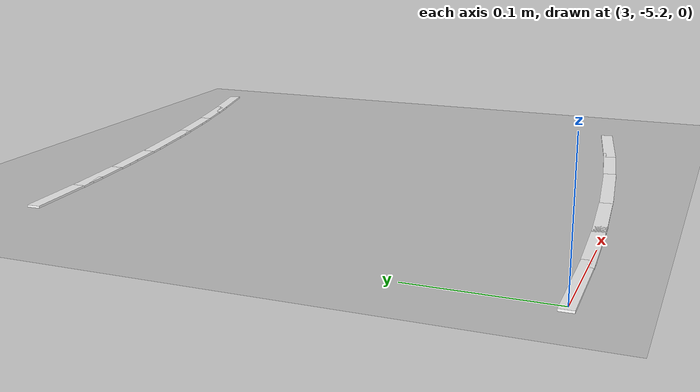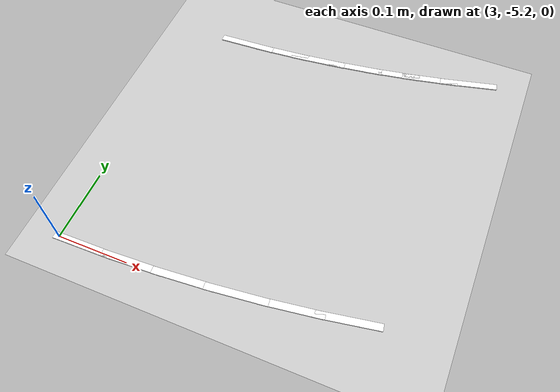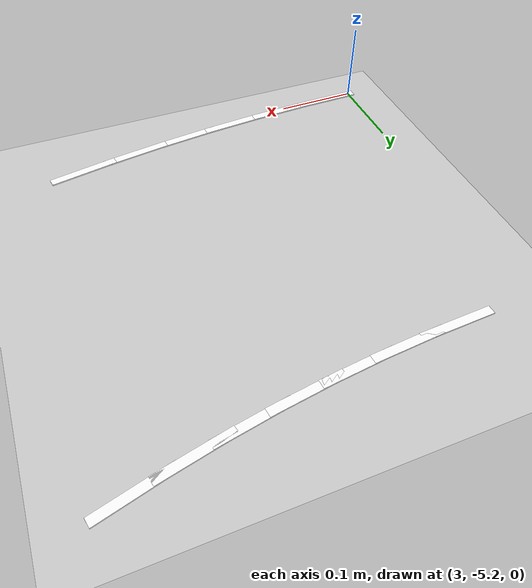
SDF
<sdf version="1.7">
 <world name="default">
  <model name="ground_plane">
   <static>1</static>
   <link name="link">
    <collision name="collision">
     <geometry><plane><normal>0 0 1</normal><size>100 100</size></plane></geometry>
     <surface>
      <contact><collide_bitmask>65535</collide_bitmask></contact>
      <friction><ode><mu>100</mu><mu2>50</mu2></ode></friction>
     </surface>
    </collision>
    <visual name="visual">
     <cast_shadows>0</cast_shadows>
     <geometry><plane><normal>0 0 1</normal><size>100 100</size></plane></geometry>
     <material>
      <script><uri>file://media/materials/scripts/gazebo.material</uri><name>Gazebo/Grey</name></script>
     </material>
    </visual>
   </link>
  </model>
  <model name="lane_line_right_50">
   <static>1</static>
   <link name="link">
    <pose>0 0 -0.004 0 -0 0</pose>
    <visual name="visual">
     <geometry><box><size>0.0841 0.01 0.01</size></box></geometry>
     <material><ambient>1 1 1 1</ambient><diffuse>1 1 1 1</diffuse></material>
    </visual>
    <collision name="collision"><geometry><box><size>0.0841 0.01 0.01</size></box></geometry></collision>
   </link>
   <pose>3.03526 -5.19946 0 0 -0 0.016029</pose>
  </model>
  <model name="lane_line_left_51">
   <static>1</static>
   <link name="link">
    <pose>0 0 -0.004 0 -0 0</pose>
    <visual name="visual">
     <geometry><box><size>0.0841 0.01 0.01</size></box></geometry>
     <material><ambient>1 1 1 1</ambient><diffuse>1 1 1 1</diffuse></material>
    </visual>
    <collision name="collision"><geometry><box><size>0.0841 0.01 0.01</size></box></geometry></collision>
   </link>
   <pose>3.08651 -4.79766 0 0 -0 0.048086</pose>
  </model>
  <model name="lane_line_right_51">
   <static>1</static>
   <link name="link">
    <pose>0 0 -0.004 0 -0 0</pose>
    <visual name="visual">
     <geometry><box><size>0.0841 0.01 0.01</size></box></geometry>
     <material><ambient>1 1 1 1</ambient><diffuse>1 1 1 1</diffuse></material>
    </visual>
    <collision name="collision"><geometry><box><size>0.0841 0.01 0.01</size></box></geometry></collision>
   </link>
   <pose>3.10574 -5.1972 0 0 -0 0.048086</pose>
  </model>
  <model name="lane_line_left_52">
   <static>1</static>
   <link name="link">
    <pose>0 0 -0.004 0 -0 0</pose>
    <visual name="visual">
     <geometry><box><size>0.0841 0.01 0.01</size></box></geometry>
     <material><ambient>1 1 1 1</ambient><diffuse>1 1 1 1</diffuse></material>
    </visual>
    <collision name="collision"><geometry><box><size>0.0841 0.01 0.01</size></box></geometry></collision>
   </link>
   <pose>3.14408 -4.79397 0 0 -0 0.080143</pose>
  </model>
  <model name="lane_line_right_52">
   <static>1</static>
   <link name="link">
    <pose>0 0 -0.004 0 -0 0</pose>
    <visual name="visual">
     <geometry><box><size>0.0841 0.01 0.01</size></box></geometry>
     <material><ambient>1 1 1 1</ambient><diffuse>1 1 1 1</diffuse></material>
    </visual>
    <collision name="collision"><geometry><box><size>0.0841 0.01 0.01</size></box></geometry></collision>
   </link>
   <pose>3.1761 -5.19268 0 0 -0 0.080143</pose>
  </model>
  <model name="lane_line_left_53">
   <static>1</static>
   <link name="link">
    <pose>0 0 -0.004 0 -0 0</pose>
    <visual name="visual">
     <geometry><box><size>0.0841 0.01 0.01</size></box></geometry>
     <material><ambient>1 1 1 1</ambient><diffuse>1 1 1 1</diffuse></material>
    </visual>
    <collision name="collision"><geometry><box><size>0.0841 0.01 0.01</size></box></geometry></collision>
   </link>
   <pose>3.20151 -4.78843 0 0 -0 0.1122</pose>
  </model>
  <model name="lane_line_right_53">
   <static>1</static>
   <link name="link">
    <pose>0 0 -0.004 0 -0 0</pose>
    <visual name="visual">
     <geometry><box><size>0.0841 0.01 0.01</size></box></geometry>
     <material><ambient>1 1 1 1</ambient><diffuse>1 1 1 1</diffuse></material>
    </visual>
    <collision name="collision"><geometry><box><size>0.0841 0.01 0.01</size></box></geometry></collision>
   </link>
   <pose>3.24629 -5.18591 0 0 -0 0.1122</pose>
  </model>
  <model name="lane_line_left_54">
   <static>1</static>
   <link name="link">
    <pose>0 0 -0.004 0 -0 0</pose>
    <visual name="visual">
     <geometry><box><size>0.0841 0.01 0.01</size></box></geometry>
     <material><ambient>1 1 1 1</ambient><diffuse>1 1 1 1</diffuse></material>
    </visual>
    <collision name="collision"><geometry><box><size>0.0841 0.01 0.01</size></box></geometry></collision>
   </link>
   <pose>3.25873 -4.78105 0 0 -0 0.144257</pose>
  </model>
  <model name="lane_line_right_54">
   <static>1</static>
   <link name="link">
    <pose>0 0 -0.004 0 -0 0</pose>
    <visual name="visual">
     <geometry><box><size>0.0841 0.01 0.01</size></box></geometry>
     <material><ambient>1 1 1 1</ambient><diffuse>1 1 1 1</diffuse></material>
    </visual>
    <collision name="collision"><geometry><box><size>0.0841 0.01 0.01</size></box></geometry></collision>
   </link>
   <pose>3.31623 -5.17689 0 0 -0 0.144257</pose>
  </model>
  <model name="lane_line_left_55">
   <static>1</static>
   <link name="link">
    <pose>0 0 -0.004 0 -0 0</pose>
    <visual name="visual">
     <geometry><box><size>0.0841 0.01 0.01</size></box></geometry>
     <material><ambient>1 1 1 1</ambient><diffuse>1 1 1 1</diffuse></material>
    </visual>
    <collision name="collision"><geometry><box><size>0.0841 0.01 0.01</size></box></geometry></collision>
   </link>
   <pose>3.31568 -4.77184 0 0 -0 0.176314</pose>
  </model>
  <model name="lane_line_right_55">
   <static>1</static>
   <link name="link">
    <pose>0 0 -0.004 0 -0 0</pose>
    <visual name="visual">
     <geometry><box><size>0.0841 0.01 0.01</size></box></geometry>
     <material><ambient>1 1 1 1</ambient><diffuse>1 1 1 1</diffuse></material>
    </visual>
    <collision name="collision"><geometry><box><size>0.0841 0.01 0.01</size></box></geometry></collision>
   </link>
   <pose>3.38584 -5.16564 0 0 -0 0.176314</pose>
  </model>
  <model name="lane_line_left_56">
   <static>1</static>
   <link name="link">
    <pose>0 0 -0.004 0 -0 0</pose>
    <visual name="visual">
     <geometry><box><size>0.0841 0.01 0.01</size></box></geometry>
     <material><ambient>1 1 1 1</ambient><diffuse>1 1 1 1</diffuse></material>
    </visual>
    <collision name="collision"><geometry><box><size>0.0841 0.01 0.01</size></box></geometry></collision>
   </link>
   <pose>3.37231 -4.76081 0 0 -0 0.208371</pose>
  </model>
  <model name="lane_line_left_57">
   <static>1</static>
   <link name="link">
    <pose>0 0 -0.004 0 -0 0</pose>
    <visual name="visual">
     <geometry><box><size>0.0841 0.01 0.01</size></box></geometry>
     <material><ambient>1 1 1 1</ambient><diffuse>1 1 1 1</diffuse></material>
    </visual>
    <collision name="collision"><geometry><box><size>0.0841 0.01 0.01</size></box></geometry></collision>
   </link>
   <pose>3.42855 -4.74798 0 0 -0 0.240428</pose>
  </model>
 </world>
</sdf>
